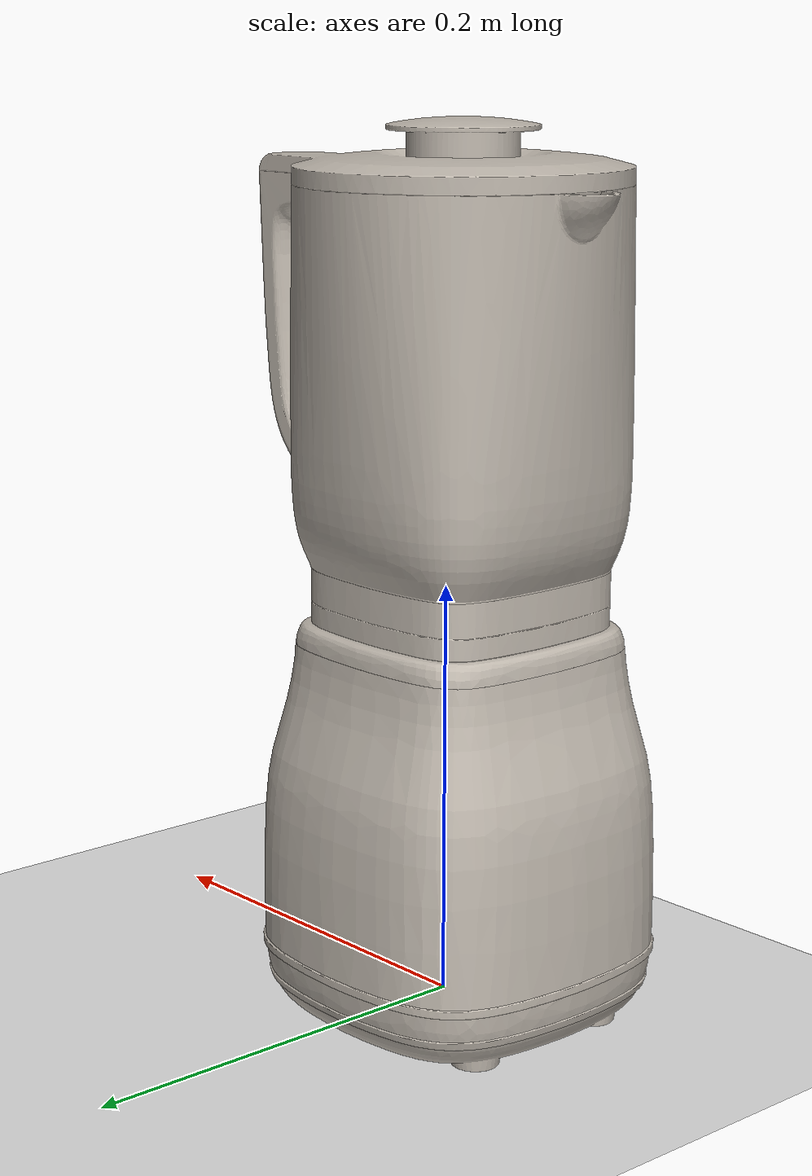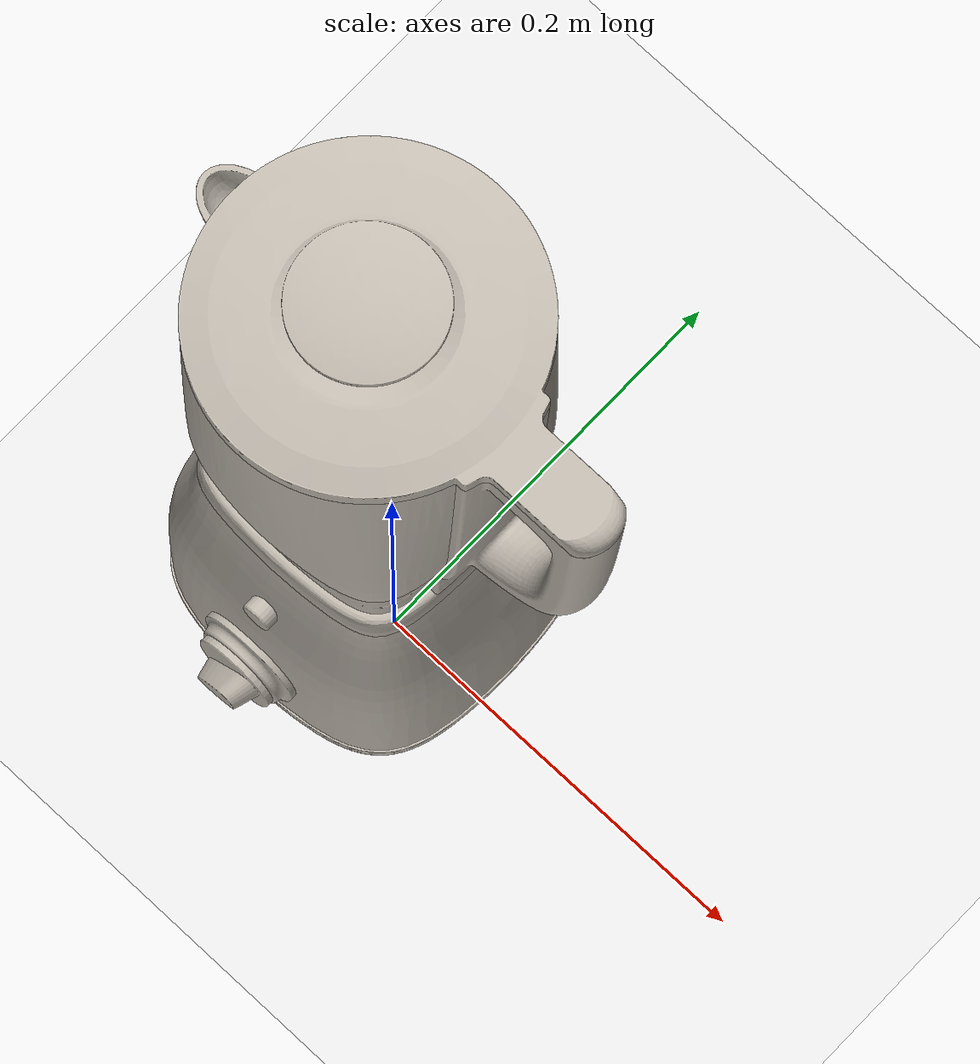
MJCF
<mujoco model="Blender002">
  <compiler
    angle="radian"
    assetdir="../../examples/mujoco_models/Blender002_obj"
    texturedir="../../Lightwheel/Blender002/texture"
  />

  <visual>
    <global offwidth="1024" offheight="1024" />
  </visual>

  <asset>
    <texture name="T_Blender002_BC001" type="2d" file="T_Blender002_BC001.png" />
    <material
      name="material_0"
      texture="T_Blender002_BC001"
      rgba="1 1 1 1"
      texuniform="false"
      texrepeat="1 1"
      specular="0"
      reflectance="0"
      shininess="0"
    />
    <texture name="T_Blender002_N001" type="2d" file="T_Blender002_N001.png" />
    <material
      name="material_1"
      texture="T_Blender002_N001"
      rgba="1 1 1 1"
      texuniform="false"
      texrepeat="1 1"
      specular="0"
      reflectance="0"
      shininess="0"
    />
    <texture name="T_Blender002_ORM001" type="2d" file="T_Blender002_ORM001.png" />
    <material
      name="material_2"
      texture="T_Blender002_ORM001"
      rgba="1 1 1 1"
      texuniform="false"
      texrepeat="1 1"
      specular="0"
      reflectance="0"
      shininess="0"
    />
    <mesh name="Blender002_Body001" file="Blender002_Body001.obj" />
    <mesh name="Blender002_Body002" file="Blender002_Body002.obj" />
    <mesh name="Blender002_Button001" file="Blender002_Button001.obj" />
    <mesh name="Blender002_Jug001" file="Blender002_Jug001.obj" />
    <mesh name="Blender002_Jug001_Clear" file="Blender002_Jug001_Clear.obj" />
    <mesh name="Blender002_Blade001" file="Blender002_Blade001.obj" />
    <mesh name="Blender002_Lid001" file="Blender002_Lid001.obj" />
    <mesh name="Blender002_Knob001" file="Blender002_Knob001.obj" />
  </asset>

  <worldbody>
    <geom name="ground" type="plane" size="5 5 0.1" rgba="0.9 0.9 0.9 1" />
    <light pos="0 0 3" dir="0 0 -1" diffuse="0.7 0.7 0.7" specular="0.3 0.3 0.3" />
    <light pos="2 2 2" dir="-1 -1 -1" diffuse="0.6 0.6 0.6" specular="0.2 0.2 0.2" />

    <!-- Main object body -->
    <body name="Blender002" pos="0 0 0.208583">
    <inertial pos="0 0 0" quat="1 0 0 0" mass="3.995814" diaginertia="1 1 1" />

      <geom type="mesh" mesh="Blender002_Body001" material="material_0" />
      <geom type="mesh" mesh="Blender002_Body002" material="material_0" />

      <body name="Blender002_Button001" pos="0 0 0">
        <joint
          name="Button001_joint"
          type="slide"
          axis="0.000000 1.000000 0.000000"
          pos="-0.019041 -0.056367 -0.043471"
          damping="1.0"
          limited="true"
          range="0.000000 0.002000"
        />
        <geom type="mesh" mesh="Blender002_Button001" material="material_0" />
      </body>
      <body name="Blender002_Jug001" pos="0 0 0">
        <joint
          name="Jug001_joint"
          type="slide"
          axis="0.000000 0.000000 1.000000"
          pos="0.016907 0.010881 0.078508"
          damping="1.0"
          limited="true"
          range="0.000000 0.100000"
        />
        <geom type="mesh" mesh="Blender002_Jug001" material="material_0" />
        <geom type="mesh" mesh="Blender002_Jug001_Clear" material="material_0" />
        <body name="Blender002_Blade001" pos="0 0 0">
          <joint
            name="Blade001_joint"
            type="hinge"
            axis="0.000000 0.000000 1.000000"
            pos="-0.020283 0.011425 0.028785"
            damping="0.0"
            limited="false"
          />
          <geom type="mesh" mesh="Blender002_Blade001" material="material_0" />
        </body>
        <body name="Blender002_Lid001" pos="0 0 0">
          <joint
            name="Lid001_joint"
            type="slide"
            axis="0.000000 0.000000 1.000000"
            pos="0.007768 0.010882 0.181177"
            damping="1.0"
            limited="true"
            range="0.000000 0.100000"
          />
          <geom type="mesh" mesh="Blender002_Lid001" material="material_0" />
        </body>
      </body>
      <body name="Blender002_Knob001" pos="0 0 0">
        <joint
          name="Knob001_joint"
          type="hinge"
          axis="0.000000 1.000000 0.000000"
          pos="-0.021078 -0.087395 -0.132159"
          damping="0.05"
          limited="true"
          range="0.000000 4.712389"
        />
        <geom type="mesh" mesh="Blender002_Knob001" material="material_0" />
      </body>
    </body>
  </worldbody>
</mujoco>
